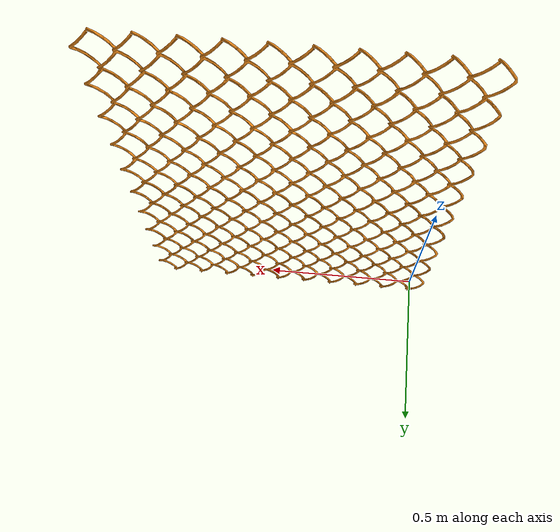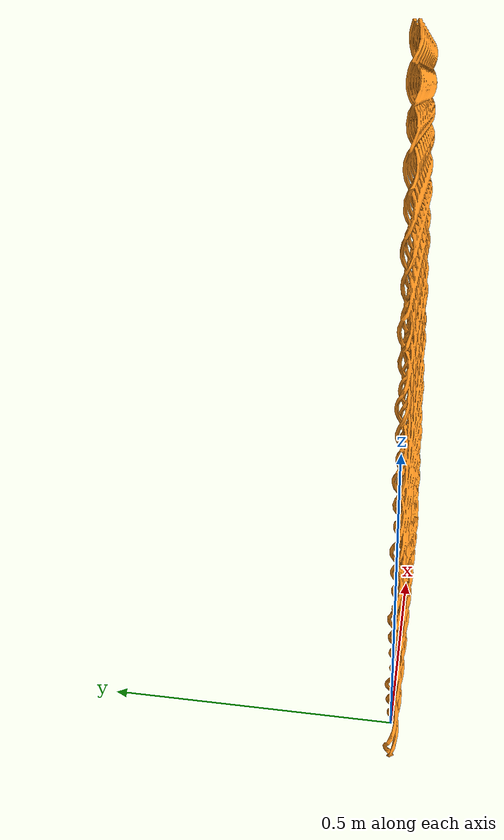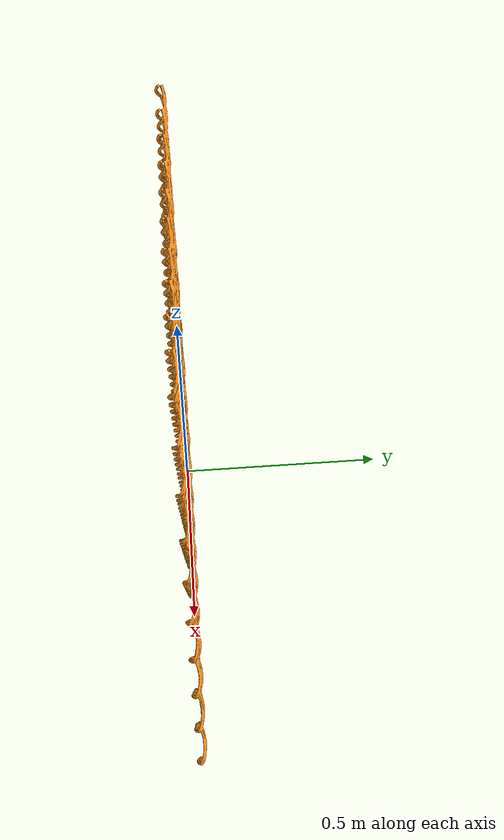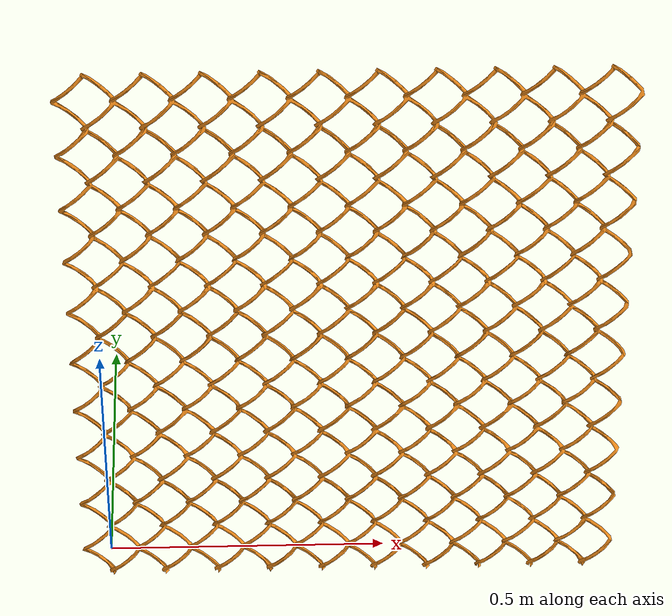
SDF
<?xml version="1.0" ?>
<sdf version="1.5">
  <model name="tree">
    <static>true</static>
    <link name="link">
      <collision name="collision">
        <geometry>
          <mesh>
            <uri>model://urdf/cad/fence.dae</uri>
            <scale>1 1 1</scale>
          </mesh>
        </geometry>
        <surface>
          <friction>
            <ode>
              <mu>100</mu>
              <mu2>50</mu2>
            </ode>
          </friction>
        </surface>
      </collision>
      <visual name="visual">
        <cast_shadows>false</cast_shadows>
        <geometry>
          <mesh>
            <uri>model://urdf/cad/fence.dae</uri>
            <scale>1 1 1</scale>
          </mesh>
        </geometry>
        <material>
          <script>
            <uri>model://urdf/gazebo.material</uri>
            <name>Gazebo/Construction_orange</name>
          </script>
        </material>
      </visual>
    </link>
  </model>
</sdf>
